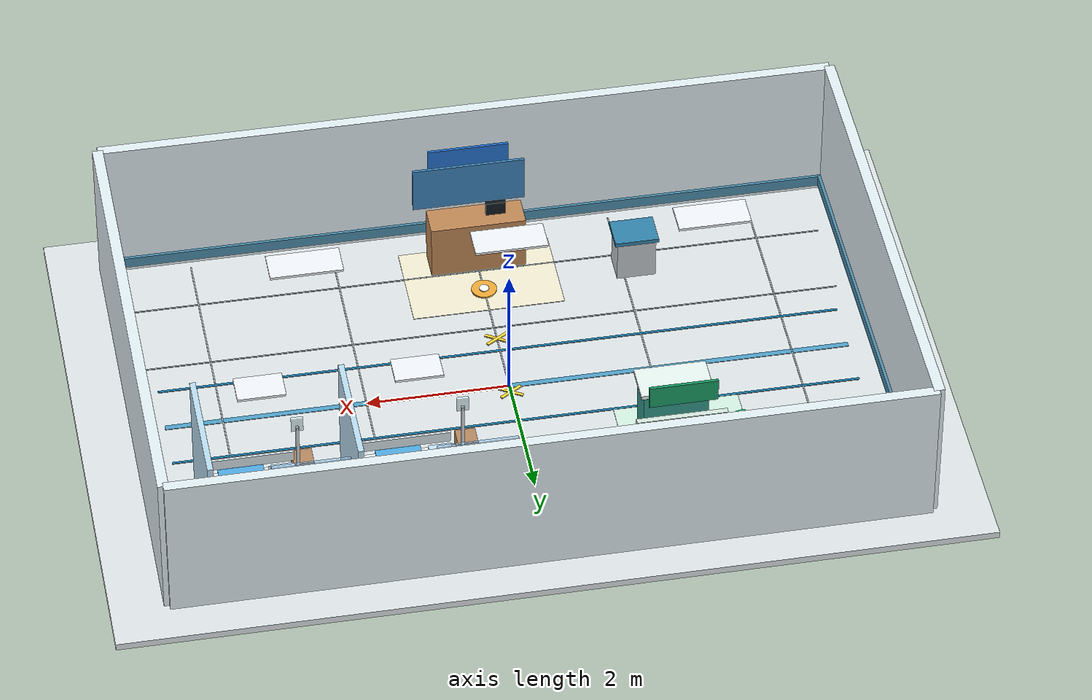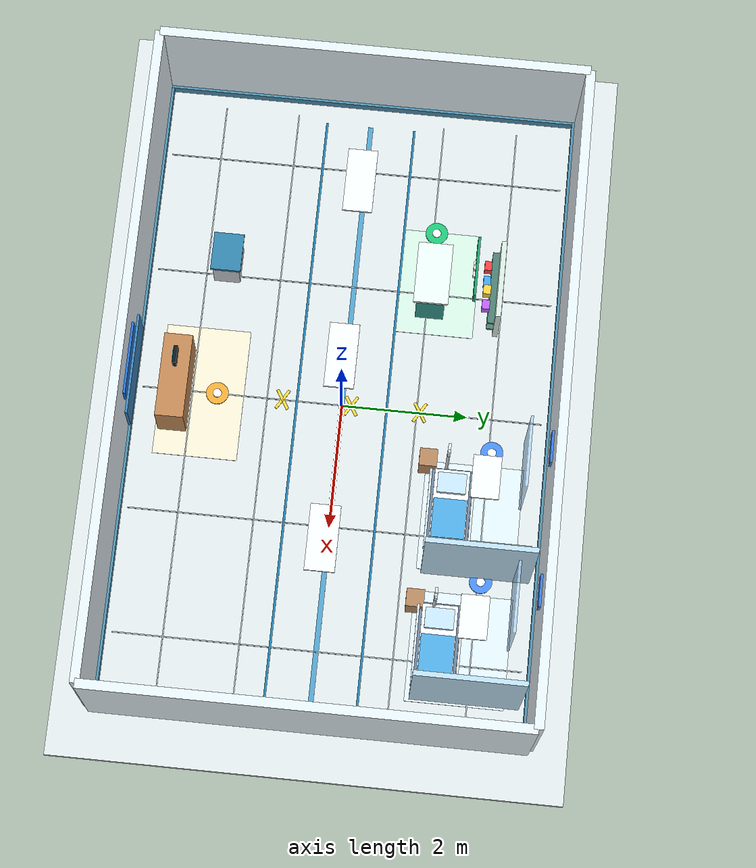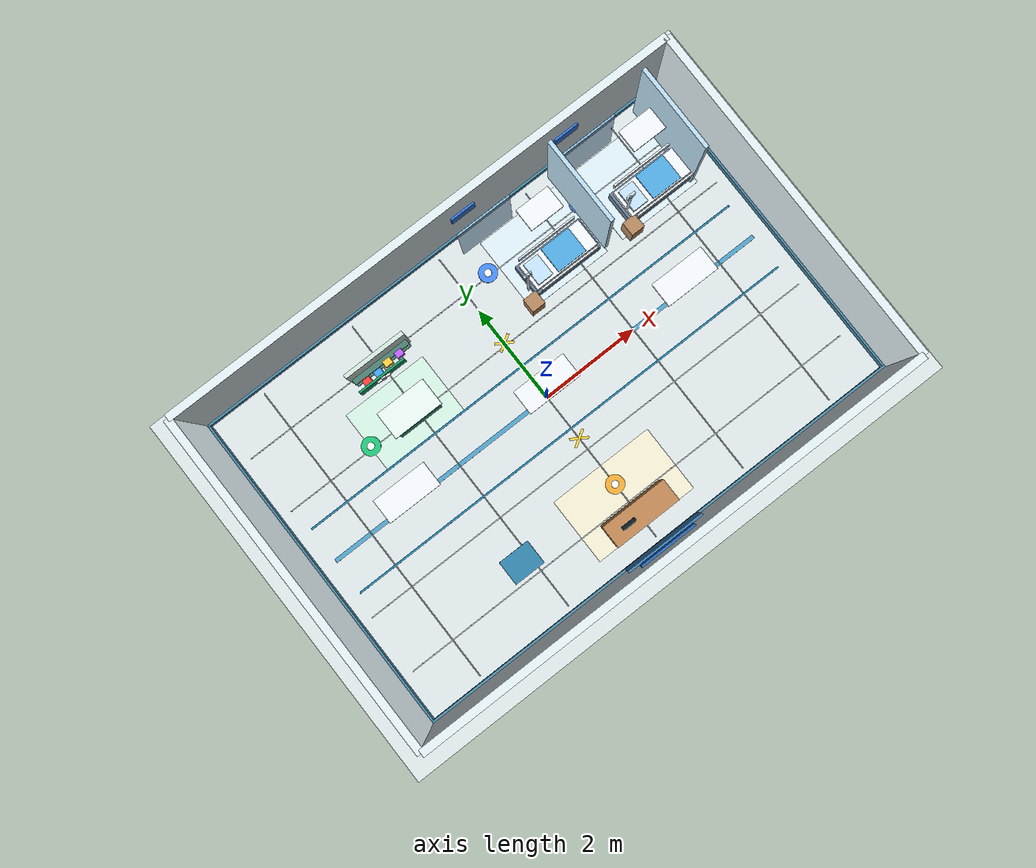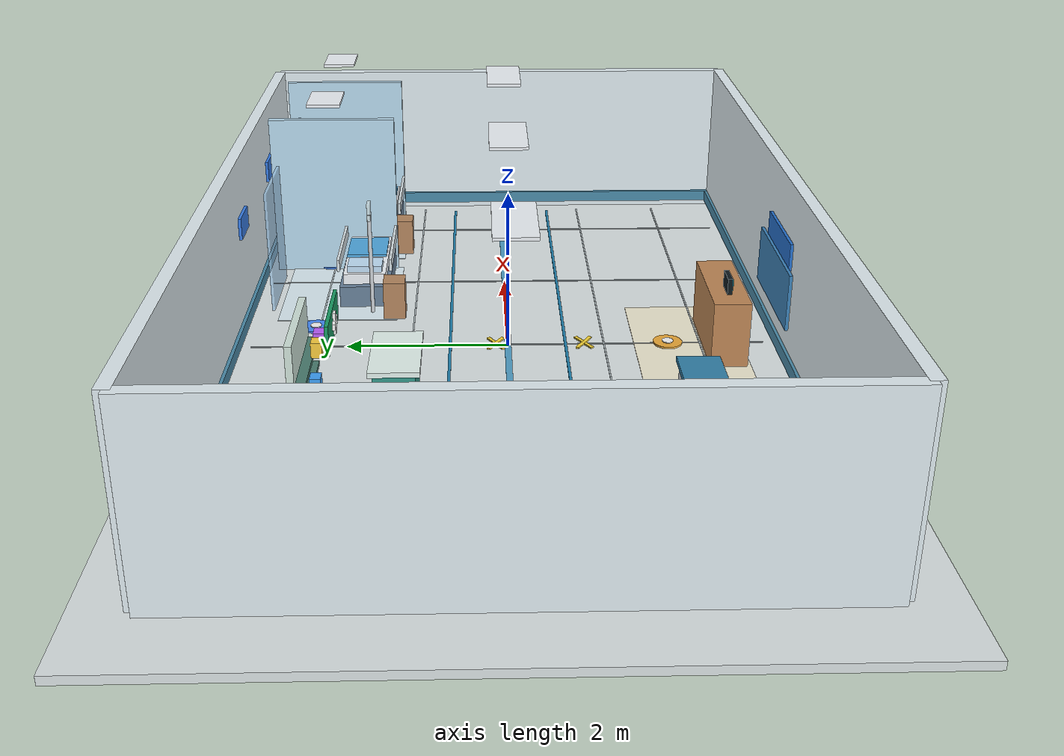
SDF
<?xml version="1.0" ?>
<sdf version="1.6">
  <world name="hospital_world">
    <gravity>0 0 -9.8</gravity>

    <scene>
      <ambient>0.78 0.8 0.82 1</ambient>
      <background>0.9 0.93 0.96 1</background>
      <shadows>false</shadows>
    </scene>

    <physics name="default_physics" type="ode">
      <max_step_size>0.001</max_step_size>
      <real_time_update_rate>1000</real_time_update_rate>
    </physics>

    <light type="directional" name="sun_light">
      <cast_shadows>false</cast_shadows>
      <pose>0 0 10 0 0 0</pose>
      <diffuse>0.95 0.95 0.9 1</diffuse>
      <specular>0.2 0.2 0.2 1</specular>
      <attenuation>
        <range>1000</range>
        <constant>0.9</constant>
        <linear>0.01</linear>
        <quadratic>0.001</quadratic>
      </attenuation>
      <direction>-0.5 0.25 -1.0</direction>
    </light>

    <light type="point" name="ceiling_light_center">
      <pose>0 0 3.5 0 0 0</pose>
      <diffuse>0.9 0.95 1.0 1</diffuse>
      <specular>0.15 0.15 0.15 1</specular>
      <attenuation>
        <range>9</range>
        <constant>0.8</constant>
        <linear>0.08</linear>
        <quadratic>0.01</quadratic>
      </attenuation>
    </light>

    <light type="point" name="ceiling_light_patient_rooms">
      <pose>2.5 2.3 3.3 0 0 0</pose>
      <diffuse>0.86 0.93 1.0 1</diffuse>
      <specular>0.12 0.12 0.12 1</specular>
      <attenuation>
        <range>7</range>
        <constant>0.8</constant>
        <linear>0.08</linear>
        <quadratic>0.012</quadratic>
      </attenuation>
    </light>

    <light type="point" name="ceiling_light_service_area">
      <pose>-1.5 -2.2 3.3 0 0 0</pose>
      <diffuse>0.86 0.93 1.0 1</diffuse>
      <specular>0.12 0.12 0.12 1</specular>
      <attenuation>
        <range>7</range>
        <constant>0.8</constant>
        <linear>0.08</linear>
        <quadratic>0.012</quadratic>
      </attenuation>
    </light>

    <model name="floor">
      <static>true</static>
      <link name="floor_link">
        <collision name="floor_collision">
          <pose>0 0 -0.05 0 0 0</pose>
          <geometry><box><size>12 8 0.1</size></box></geometry>
        </collision>
        <visual name="floor_visual">
          <pose>0 0 -0.05 0 0 0</pose>
          <geometry><box><size>12 8 0.1</size></box></geometry>
          <material>
            <ambient>0.8 0.84 0.85 1</ambient>
            <diffuse>0.88 0.91 0.92 1</diffuse>
            <specular>0.05 0.05 0.05 1</specular>
          </material>
        </visual>
      </link>
    </model>

    <model name="main_corridor_strip">
      <static>true</static>
      <link name="link">
        <visual name="visual">
          <pose>0 0 0.006 0 0 0</pose>
          <geometry><box><size>9.6 0.08 0.01</size></box></geometry>
          <material>
            <ambient>0.28 0.55 0.68 1</ambient>
            <diffuse>0.32 0.64 0.8 1</diffuse>
          </material>
        </visual>
      </link>
    </model>

    <model name="floor_zones_and_markings">
      <static>true</static>
      <link name="link">
        <visual name="patient_room_floor_101">
          <pose>1.65 2.2 0.008 0 0 0</pose>
          <geometry><box><size>1.75 1.55 0.01</size></box></geometry>
          <material>
            <ambient>0.83 0.9 0.94 1</ambient>
            <diffuse>0.88 0.95 0.98 1</diffuse>
          </material>
        </visual>
        <visual name="patient_room_floor_102">
          <pose>3.75 2.2 0.008 0 0 0</pose>
          <geometry><box><size>1.75 1.55 0.01</size></box></geometry>
          <material>
            <ambient>0.83 0.9 0.94 1</ambient>
            <diffuse>0.88 0.95 0.98 1</diffuse>
          </material>
        </visual>
        <visual name="pharmacy_floor">
          <pose>-2.2 1.35 0.009 0 0 0</pose>
          <geometry><box><size>1.75 1.25 0.01</size></box></geometry>
          <material>
            <ambient>0.8 0.9 0.86 1</ambient>
            <diffuse>0.84 0.96 0.9 1</diffuse>
          </material>
        </visual>
        <visual name="nurse_station_floor">
          <pose>0 -2.25 0.009 0 0 0</pose>
          <geometry><box><size>2.15 1.35 0.01</size></box></geometry>
          <material>
            <ambient>0.88 0.86 0.78 1</ambient>
            <diffuse>0.96 0.94 0.84 1</diffuse>
          </material>
        </visual>
        <visual name="corridor_edge_north">
          <pose>0 0.72 0.014 0 0 0</pose>
          <geometry><box><size>9.6 0.035 0.012</size></box></geometry>
          <material><ambient>0.1 0.42 0.56 1</ambient><diffuse>0.12 0.5 0.68 1</diffuse></material>
        </visual>
        <visual name="corridor_edge_south">
          <pose>0 -0.72 0.014 0 0 0</pose>
          <geometry><box><size>9.6 0.035 0.012</size></box></geometry>
          <material><ambient>0.1 0.42 0.56 1</ambient><diffuse>0.12 0.5 0.68 1</diffuse></material>
        </visual>
      </link>
    </model>

    <model name="floor_tile_lines">
      <static>true</static>
      <link name="link">
        <visual name="tile_x_1"><pose>-4 0 0.012 0 0 0</pose><geometry><box><size>0.018 6.4 0.01</size></box></geometry><material><ambient>0.68 0.73 0.75 1</ambient><diffuse>0.72 0.77 0.79 1</diffuse></material></visual>
        <visual name="tile_x_2"><pose>-2 0 0.012 0 0 0</pose><geometry><box><size>0.018 6.4 0.01</size></box></geometry><material><ambient>0.68 0.73 0.75 1</ambient><diffuse>0.72 0.77 0.79 1</diffuse></material></visual>
        <visual name="tile_x_3"><pose>0 0 0.012 0 0 0</pose><geometry><box><size>0.018 6.4 0.01</size></box></geometry><material><ambient>0.68 0.73 0.75 1</ambient><diffuse>0.72 0.77 0.79 1</diffuse></material></visual>
        <visual name="tile_x_4"><pose>2 0 0.012 0 0 0</pose><geometry><box><size>0.018 6.4 0.01</size></box></geometry><material><ambient>0.68 0.73 0.75 1</ambient><diffuse>0.72 0.77 0.79 1</diffuse></material></visual>
        <visual name="tile_x_5"><pose>4 0 0.012 0 0 0</pose><geometry><box><size>0.018 6.4 0.01</size></box></geometry><material><ambient>0.68 0.73 0.75 1</ambient><diffuse>0.72 0.77 0.79 1</diffuse></material></visual>
        <visual name="tile_y_1"><pose>0 -2.4 0.012 0 0 0</pose><geometry><box><size>9.8 0.018 0.01</size></box></geometry><material><ambient>0.68 0.73 0.75 1</ambient><diffuse>0.72 0.77 0.79 1</diffuse></material></visual>
        <visual name="tile_y_2"><pose>0 -1.2 0.012 0 0 0</pose><geometry><box><size>9.8 0.018 0.01</size></box></geometry><material><ambient>0.68 0.73 0.75 1</ambient><diffuse>0.72 0.77 0.79 1</diffuse></material></visual>
        <visual name="tile_y_3"><pose>0 1.2 0.012 0 0 0</pose><geometry><box><size>9.8 0.018 0.01</size></box></geometry><material><ambient>0.68 0.73 0.75 1</ambient><diffuse>0.72 0.77 0.79 1</diffuse></material></visual>
        <visual name="tile_y_4"><pose>0 2.4 0.012 0 0 0</pose><geometry><box><size>9.8 0.018 0.01</size></box></geometry><material><ambient>0.68 0.73 0.75 1</ambient><diffuse>0.72 0.77 0.79 1</diffuse></material></visual>
      </link>
    </model>

    <model name="north_wall">
      <static>true</static>
      <pose>0 3.4 1.1 0 0 0</pose>
      <link name="link">
        <collision name="collision"><geometry><box><size>10.4 0.15 2.2</size></box></geometry></collision>
        <visual name="visual">
          <geometry><box><size>10.4 0.15 2.2</size></box></geometry>
          <material>
            <ambient>0.82 0.88 0.9 1</ambient>
            <diffuse>0.9 0.95 0.97 1</diffuse>
          </material>
        </visual>
      </link>
    </model>

    <model name="south_wall">
      <static>true</static>
      <pose>0 -3.4 1.1 0 0 0</pose>
      <link name="link">
        <collision name="collision"><geometry><box><size>10.4 0.15 2.2</size></box></geometry></collision>
        <visual name="visual">
          <geometry><box><size>10.4 0.15 2.2</size></box></geometry>
          <material>
            <ambient>0.82 0.88 0.9 1</ambient>
            <diffuse>0.9 0.95 0.97 1</diffuse>
          </material>
        </visual>
      </link>
    </model>

    <model name="west_wall">
      <static>true</static>
      <pose>-5.2 0 1.1 0 0 0</pose>
      <link name="link">
        <collision name="collision"><geometry><box><size>0.15 6.8 2.2</size></box></geometry></collision>
        <visual name="visual">
          <geometry><box><size>0.15 6.8 2.2</size></box></geometry>
          <material>
            <ambient>0.82 0.88 0.9 1</ambient>
            <diffuse>0.9 0.95 0.97 1</diffuse>
          </material>
        </visual>
      </link>
    </model>

    <model name="east_wall">
      <static>true</static>
      <pose>5.2 0 1.1 0 0 0</pose>
      <link name="link">
        <collision name="collision"><geometry><box><size>0.15 6.8 2.2</size></box></geometry></collision>
        <visual name="visual">
          <geometry><box><size>0.15 6.8 2.2</size></box></geometry>
          <material>
            <ambient>0.82 0.88 0.9 1</ambient>
            <diffuse>0.9 0.95 0.97 1</diffuse>
          </material>
        </visual>
      </link>
    </model>

    <model name="room_101_visual_wall">
      <static>true</static>
      <pose>2.55 2.35 1.1 0 0 0</pose>
      <link name="link">
        <visual name="visual">
          <geometry><box><size>0.08 1.7 2.2</size></box></geometry>
          <material>
            <ambient>0.68 0.8 0.88 1</ambient>
            <diffuse>0.74 0.88 0.96 1</diffuse>
          </material>
        </visual>
      </link>
    </model>

    <model name="room_102_visual_wall">
      <static>true</static>
      <pose>4.55 2.35 1.1 0 0 0</pose>
      <link name="link">
        <visual name="visual">
          <geometry><box><size>0.08 1.7 2.2</size></box></geometry>
          <material>
            <ambient>0.68 0.8 0.88 1</ambient>
            <diffuse>0.74 0.88 0.96 1</diffuse>
          </material>
        </visual>
      </link>
    </model>

    <model name="bed_1">
      <static>true</static>
      <pose>1.7 1.85 0 0 0 0</pose>
      <link name="bed_link">
        <collision name="bed_collision">
          <pose>0 0 0.27 0 0 0</pose>
          <geometry><box><size>1.35 0.55 0.34</size></box></geometry>
        </collision>
        <visual name="bed_frame">
          <pose>0 0 0.25 0 0 0</pose>
          <geometry><box><size>1.45 0.65 0.28</size></box></geometry>
          <material>
            <ambient>0.38 0.46 0.55 1</ambient>
            <diffuse>0.42 0.52 0.62 1</diffuse>
          </material>
        </visual>
        <visual name="mattress">
          <pose>0 0 0.48 0 0 0</pose>
          <geometry><box><size>1.35 0.55 0.14</size></box></geometry>
          <material>
            <ambient>0.92 0.95 0.98 1</ambient>
            <diffuse>0.96 0.98 1.0 1</diffuse>
          </material>
        </visual>
        <visual name="pillow">
          <pose>-0.45 0 0.59 0 0 0</pose>
          <geometry><box><size>0.32 0.45 0.08</size></box></geometry>
          <material>
            <ambient>0.74 0.86 0.96 1</ambient>
            <diffuse>0.78 0.9 1.0 1</diffuse>
          </material>
        </visual>
      </link>
    </model>

    <model name="bed_2">
      <static>true</static>
      <pose>3.85 1.85 0 0 0 0</pose>
      <link name="bed_link">
        <collision name="bed_collision">
          <pose>0 0 0.27 0 0 0</pose>
          <geometry><box><size>1.35 0.55 0.34</size></box></geometry>
        </collision>
        <visual name="bed_frame">
          <pose>0 0 0.25 0 0 0</pose>
          <geometry><box><size>1.45 0.65 0.28</size></box></geometry>
          <material>
            <ambient>0.38 0.46 0.55 1</ambient>
            <diffuse>0.42 0.52 0.62 1</diffuse>
          </material>
        </visual>
        <visual name="mattress">
          <pose>0 0 0.48 0 0 0</pose>
          <geometry><box><size>1.35 0.55 0.14</size></box></geometry>
          <material>
            <ambient>0.92 0.95 0.98 1</ambient>
            <diffuse>0.96 0.98 1.0 1</diffuse>
          </material>
        </visual>
        <visual name="pillow">
          <pose>-0.45 0 0.59 0 0 0</pose>
          <geometry><box><size>0.32 0.45 0.08</size></box></geometry>
          <material>
            <ambient>0.74 0.86 0.96 1</ambient>
            <diffuse>0.78 0.9 1.0 1</diffuse>
          </material>
        </visual>
      </link>
    </model>

    <model name="obstacle_cart">
      <static>true</static>
      <pose>-2.15 -2.05 0 0 0 0</pose>
      <link name="cart_link">
        <collision name="cart_collision">
          <pose>0 0 0.35 0 0 0</pose>
          <geometry><box><size>0.55 0.42 0.7</size></box></geometry>
        </collision>
        <visual name="cart_body">
          <pose>0 0 0.38 0 0 0</pose>
          <geometry><box><size>0.55 0.42 0.62</size></box></geometry>
          <material>
            <ambient>0.72 0.74 0.76 1</ambient>
            <diffuse>0.78 0.8 0.82 1</diffuse>
          </material>
        </visual>
        <visual name="cart_top">
          <pose>0 0 0.72 0 0 0</pose>
          <geometry><box><size>0.62 0.48 0.06</size></box></geometry>
          <material>
            <ambient>0.18 0.45 0.58 1</ambient>
            <diffuse>0.2 0.52 0.68 1</diffuse>
          </material>
        </visual>
      </link>
    </model>

    <model name="delivery_station_pharmacy">
      <static>true</static>
      <pose>-2.05 1.25 0 0 0 0</pose>
      <link name="station">
        <collision name="counter_collision">
          <pose>0 0 0.45 0 0 0</pose>
          <geometry><box><size>0.9 0.45 0.9</size></box></geometry>
        </collision>
        <visual name="counter">
          <pose>0 0 0.45 0 0 0</pose>
          <geometry><box><size>0.9 0.45 0.9</size></box></geometry>
          <material>
            <ambient>0.18 0.5 0.46 1</ambient>
            <diffuse>0.2 0.6 0.55 1</diffuse>
          </material>
        </visual>
        <visual name="counter_top">
          <pose>0 0 0.92 0 0 0</pose>
          <geometry><box><size>1.0 0.55 0.06</size></box></geometry>
          <material>
            <ambient>0.88 0.94 0.92 1</ambient>
            <diffuse>0.92 0.98 0.96 1</diffuse>
          </material>
        </visual>
      </link>
    </model>

    <model name="delivery_station_nurse">
      <static>true</static>
      <pose>0 -2.65 0 0 0 0</pose>
      <link name="station">
        <collision name="desk_collision">
          <pose>0 0 0.42 0 0 0</pose>
          <geometry><box><size>1.35 0.45 0.84</size></box></geometry>
        </collision>
        <visual name="desk">
          <pose>0 0 0.42 0 0 0</pose>
          <geometry><box><size>1.35 0.45 0.84</size></box></geometry>
          <material>
            <ambient>0.68 0.46 0.28 1</ambient>
            <diffuse>0.76 0.54 0.34 1</diffuse>
          </material>
        </visual>
        <visual name="monitor">
          <pose>-0.28 0 0.95 0 0 0</pose>
          <geometry><box><size>0.28 0.06 0.2</size></box></geometry>
          <material>
            <ambient>0.05 0.08 0.1 1</ambient>
            <diffuse>0.06 0.1 0.12 1</diffuse>
          </material>
        </visual>
      </link>
    </model>

    <model name="wall_baseboards">
      <static>true</static>
      <link name="link">
        <visual name="north_baseboard"><pose>0 3.305 0.16 0 0 0</pose><geometry><box><size>10.25 0.045 0.16</size></box></geometry><material><ambient>0.26 0.48 0.58 1</ambient><diffuse>0.3 0.56 0.68 1</diffuse></material></visual>
        <visual name="south_baseboard"><pose>0 -3.305 0.16 0 0 0</pose><geometry><box><size>10.25 0.045 0.16</size></box></geometry><material><ambient>0.26 0.48 0.58 1</ambient><diffuse>0.3 0.56 0.68 1</diffuse></material></visual>
        <visual name="west_baseboard"><pose>-5.105 0 0.16 0 0 0</pose><geometry><box><size>0.045 6.65 0.16</size></box></geometry><material><ambient>0.26 0.48 0.58 1</ambient><diffuse>0.3 0.56 0.68 1</diffuse></material></visual>
        <visual name="east_baseboard"><pose>5.105 0 0.16 0 0 0</pose><geometry><box><size>0.045 6.65 0.16</size></box></geometry><material><ambient>0.26 0.48 0.58 1</ambient><diffuse>0.3 0.56 0.68 1</diffuse></material></visual>
      </link>
    </model>

    <model name="delivery_goal_markers">
      <static>true</static>
      <link name="link">
        <visual name="pharmacy_goal_pad">
          <pose>-3.05 1.25 0.025 0 0 0</pose>
          <geometry><cylinder><radius>0.18</radius><length>0.025</length></cylinder></geometry>
          <material><ambient>0.1 0.65 0.38 1</ambient><diffuse>0.12 0.78 0.48 1</diffuse></material>
        </visual>
        <visual name="pharmacy_goal_center">
          <pose>-3.05 1.25 0.045 0 0 0</pose>
          <geometry><cylinder><radius>0.07</radius><length>0.012</length></cylinder></geometry>
          <material><ambient>0.95 1 0.95 1</ambient><diffuse>1 1 1 1</diffuse></material>
        </visual>
        <visual name="nurse_goal_pad">
          <pose>0 -2.0 0.025 0 0 0</pose>
          <geometry><cylinder><radius>0.18</radius><length>0.025</length></cylinder></geometry>
          <material><ambient>0.84 0.58 0.18 1</ambient><diffuse>0.95 0.68 0.22 1</diffuse></material>
        </visual>
        <visual name="nurse_goal_center">
          <pose>0 -2.0 0.045 0 0 0</pose>
          <geometry><cylinder><radius>0.07</radius><length>0.012</length></cylinder></geometry>
          <material><ambient>0.95 1 0.95 1</ambient><diffuse>1 1 1 1</diffuse></material>
        </visual>
        <visual name="room_101_goal_pad">
          <pose>0.55 2.45 0.025 0 0 0</pose>
          <geometry><cylinder><radius>0.18</radius><length>0.025</length></cylinder></geometry>
          <material><ambient>0.22 0.46 0.9 1</ambient><diffuse>0.28 0.56 1.0 1</diffuse></material>
        </visual>
        <visual name="room_101_goal_center">
          <pose>0.55 2.45 0.045 0 0 0</pose>
          <geometry><cylinder><radius>0.07</radius><length>0.012</length></cylinder></geometry>
          <material><ambient>0.95 1 0.95 1</ambient><diffuse>1 1 1 1</diffuse></material>
        </visual>
        <visual name="room_102_goal_pad">
          <pose>2.65 2.45 0.025 0 0 0</pose>
          <geometry><cylinder><radius>0.18</radius><length>0.025</length></cylinder></geometry>
          <material><ambient>0.22 0.46 0.9 1</ambient><diffuse>0.28 0.56 1.0 1</diffuse></material>
        </visual>
        <visual name="room_102_goal_center">
          <pose>2.65 2.45 0.045 0 0 0</pose>
          <geometry><cylinder><radius>0.07</radius><length>0.012</length></cylinder></geometry>
          <material><ambient>0.95 1 0.95 1</ambient><diffuse>1 1 1 1</diffuse></material>
        </visual>
      </link>
    </model>

    <model name="hospital_signage">
      <static>true</static>
      <link name="link">
        <visual name="pharmacy_sign_panel">
          <pose>-2.05 1.92 1.3 0 0 0</pose>
          <geometry><box><size>0.95 0.04 0.34</size></box></geometry>
          <material><ambient>0.08 0.5 0.32 1</ambient><diffuse>0.1 0.62 0.4 1</diffuse></material>
        </visual>
        <visual name="pharmacy_cross_vertical">
          <pose>-2.05 1.895 1.3 0 0 0</pose>
          <geometry><box><size>0.08 0.045 0.24</size></box></geometry>
          <material><ambient>0.96 1 0.96 1</ambient><diffuse>1 1 1 1</diffuse></material>
        </visual>
        <visual name="pharmacy_cross_horizontal">
          <pose>-2.05 1.89 1.3 0 0 0</pose>
          <geometry><box><size>0.26 0.045 0.075</size></box></geometry>
          <material><ambient>0.96 1 0.96 1</ambient><diffuse>1 1 1 1</diffuse></material>
        </visual>
        <visual name="nurse_sign_panel">
          <pose>0 -3.31 1.38 0 0 0</pose>
          <geometry><box><size>1.15 0.045 0.34</size></box></geometry>
          <material><ambient>0.12 0.36 0.68 1</ambient><diffuse>0.15 0.45 0.82 1</diffuse></material>
        </visual>
        <visual name="nurse_sign_white_bar">
          <pose>0 -3.34 1.38 0 0 0</pose>
          <geometry><box><size>0.78 0.05 0.07</size></box></geometry>
          <material><ambient>0.96 0.98 1 1</ambient><diffuse>1 1 1 1</diffuse></material>
        </visual>
        <visual name="room_101_badge">
          <pose>0.75 3.31 1.38 0 0 0</pose>
          <geometry><box><size>0.5 0.045 0.28</size></box></geometry>
          <material><ambient>0.18 0.42 0.76 1</ambient><diffuse>0.22 0.5 0.92 1</diffuse></material>
        </visual>
        <visual name="room_101_badge_mark_1"><pose>0.62 3.34 1.38 0 0 0</pose><geometry><box><size>0.055 0.05 0.18</size></box></geometry><material><ambient>1 1 1 1</ambient><diffuse>1 1 1 1</diffuse></material></visual>
        <visual name="room_101_badge_mark_2"><pose>0.76 3.34 1.38 0 0 0</pose><geometry><box><size>0.055 0.05 0.18</size></box></geometry><material><ambient>1 1 1 1</ambient><diffuse>1 1 1 1</diffuse></material></visual>
        <visual name="room_102_badge">
          <pose>3.0 3.31 1.38 0 0 0</pose>
          <geometry><box><size>0.5 0.045 0.28</size></box></geometry>
          <material><ambient>0.18 0.42 0.76 1</ambient><diffuse>0.22 0.5 0.92 1</diffuse></material>
        </visual>
        <visual name="room_102_badge_mark_1"><pose>2.85 3.34 1.38 0 0 0</pose><geometry><box><size>0.055 0.05 0.18</size></box></geometry><material><ambient>1 1 1 1</ambient><diffuse>1 1 1 1</diffuse></material></visual>
        <visual name="room_102_badge_mark_2"><pose>3.0 3.34 1.38 0 0 0</pose><geometry><box><size>0.055 0.05 0.18</size></box></geometry><material><ambient>1 1 1 1</ambient><diffuse>1 1 1 1</diffuse></material></visual>
        <visual name="room_102_badge_mark_3"><pose>3.15 3.34 1.38 0 0 0</pose><geometry><box><size>0.055 0.05 0.18</size></box></geometry><material><ambient>1 1 1 1</ambient><diffuse>1 1 1 1</diffuse></material></visual>
      </link>
    </model>

    <model name="pharmacy_shelves">
      <static>true</static>
      <link name="link">
        <visual name="shelf_back"><pose>-1.95 2.32 0.75 0 0 0</pose><geometry><box><size>1.25 0.08 1.05</size></box></geometry><material><ambient>0.78 0.86 0.82 1</ambient><diffuse>0.84 0.92 0.88 1</diffuse></material></visual>
        <visual name="shelf_1"><pose>-1.95 2.25 0.48 0 0 0</pose><geometry><box><size>1.18 0.16 0.05</size></box></geometry><material><ambient>0.25 0.42 0.38 1</ambient><diffuse>0.3 0.5 0.45 1</diffuse></material></visual>
        <visual name="shelf_2"><pose>-1.95 2.25 0.78 0 0 0</pose><geometry><box><size>1.18 0.16 0.05</size></box></geometry><material><ambient>0.25 0.42 0.38 1</ambient><diffuse>0.3 0.5 0.45 1</diffuse></material></visual>
        <visual name="medicine_box_1"><pose>-2.35 2.12 0.6 0 0 0</pose><geometry><box><size>0.15 0.12 0.18</size></box></geometry><material><ambient>0.9 0.2 0.2 1</ambient><diffuse>1 0.25 0.25 1</diffuse></material></visual>
        <visual name="medicine_box_2"><pose>-2.1 2.12 0.6 0 0 0</pose><geometry><box><size>0.15 0.12 0.18</size></box></geometry><material><ambient>0.2 0.55 0.95 1</ambient><diffuse>0.25 0.65 1 1</diffuse></material></visual>
        <visual name="medicine_box_3"><pose>-1.85 2.12 0.9 0 0 0</pose><geometry><box><size>0.15 0.12 0.18</size></box></geometry><material><ambient>0.95 0.72 0.2 1</ambient><diffuse>1 0.82 0.25 1</diffuse></material></visual>
        <visual name="medicine_box_4"><pose>-1.6 2.12 0.9 0 0 0</pose><geometry><box><size>0.15 0.12 0.18</size></box></geometry><material><ambient>0.65 0.3 0.88 1</ambient><diffuse>0.75 0.38 1 1</diffuse></material></visual>
      </link>
    </model>

    <model name="nurse_station_details">
      <static>true</static>
      <link name="link">
        <visual name="back_board"><pose>0 -3.27 0.9 0 0 0</pose><geometry><box><size>1.6 0.04 0.7</size></box></geometry><material><ambient>0.2 0.44 0.62 1</ambient><diffuse>0.24 0.52 0.74 1</diffuse></material></visual>
        <visual name="chart_1"><pose>-0.42 -3.305 0.95 0 0 0</pose><geometry><box><size>0.22 0.045 0.28</size></box></geometry><material><ambient>0.96 0.96 0.9 1</ambient><diffuse>1 1 0.94 1</diffuse></material></visual>
        <visual name="chart_2"><pose>-0.08 -3.305 0.95 0 0 0</pose><geometry><box><size>0.22 0.045 0.28</size></box></geometry><material><ambient>0.96 0.96 0.9 1</ambient><diffuse>1 1 0.94 1</diffuse></material></visual>
        <visual name="chart_3"><pose>0.26 -3.305 0.95 0 0 0</pose><geometry><box><size>0.22 0.045 0.28</size></box></geometry><material><ambient>0.96 0.96 0.9 1</ambient><diffuse>1 1 0.94 1</diffuse></material></visual>
        <visual name="monitor_glow"><pose>-0.28 -2.66 0.95 0 0 0</pose><geometry><box><size>0.22 0.065 0.13</size></box></geometry><material><ambient>0.08 0.75 0.9 1</ambient><diffuse>0.08 0.85 1 1</diffuse></material></visual>
      </link>
    </model>

    <model name="patient_room_details">
      <static>true</static>
      <link name="link">
        <visual name="curtain_101"><pose>0.95 2.95 1.1 0 0 0</pose><geometry><box><size>1.1 0.035 1.55</size></box></geometry><material><ambient>0.6 0.78 0.92 0.72</ambient><diffuse>0.68 0.86 1 0.72</diffuse></material></visual>
        <visual name="curtain_102"><pose>3.2 2.95 1.1 0 0 0</pose><geometry><box><size>1.1 0.035 1.55</size></box></geometry><material><ambient>0.6 0.78 0.92 0.72</ambient><diffuse>0.68 0.86 1 0.72</diffuse></material></visual>
        <visual name="iv_pole_101"><pose>0.95 1.75 0.72 0 0 0</pose><geometry><cylinder><radius>0.025</radius><length>1.35</length></cylinder></geometry><material><ambient>0.72 0.74 0.76 1</ambient><diffuse>0.8 0.82 0.84 1</diffuse></material></visual>
        <visual name="iv_bag_101"><pose>0.95 1.75 1.45 0 0 0</pose><geometry><box><size>0.16 0.04 0.22</size></box></geometry><material><ambient>0.85 0.95 1 0.86</ambient><diffuse>0.9 0.98 1 0.86</diffuse></material></visual>
        <visual name="iv_pole_102"><pose>3.2 1.75 0.72 0 0 0</pose><geometry><cylinder><radius>0.025</radius><length>1.35</length></cylinder></geometry><material><ambient>0.72 0.74 0.76 1</ambient><diffuse>0.8 0.82 0.84 1</diffuse></material></visual>
        <visual name="iv_bag_102"><pose>3.2 1.75 1.45 0 0 0</pose><geometry><box><size>0.16 0.04 0.22</size></box></geometry><material><ambient>0.85 0.95 1 0.86</ambient><diffuse>0.9 0.98 1 0.86</diffuse></material></visual>
        <visual name="bedside_table_101"><pose>0.85 1.45 0.3 0 0 0</pose><geometry><box><size>0.28 0.28 0.5</size></box></geometry><material><ambient>0.62 0.46 0.32 1</ambient><diffuse>0.72 0.54 0.38 1</diffuse></material></visual>
        <visual name="bedside_table_102"><pose>3.1 1.45 0.3 0 0 0</pose><geometry><box><size>0.28 0.28 0.5</size></box></geometry><material><ambient>0.62 0.46 0.32 1</ambient><diffuse>0.72 0.54 0.38 1</diffuse></material></visual>
      </link>
    </model>

    <model name="bed_polish_details">
      <static>true</static>
      <link name="link">
        <visual name="blanket_101"><pose>1.82 1.85 0.61 0 0 0</pose><geometry><box><size>0.62 0.52 0.035</size></box></geometry><material><ambient>0.28 0.58 0.78 1</ambient><diffuse>0.32 0.68 0.9 1</diffuse></material></visual>
        <visual name="left_rail_101"><pose>1.7 2.19 0.65 0 0 0</pose><geometry><box><size>1.25 0.035 0.16</size></box></geometry><material><ambient>0.78 0.82 0.84 1</ambient><diffuse>0.86 0.9 0.92 1</diffuse></material></visual>
        <visual name="right_rail_101"><pose>1.7 1.51 0.65 0 0 0</pose><geometry><box><size>1.25 0.035 0.16</size></box></geometry><material><ambient>0.78 0.82 0.84 1</ambient><diffuse>0.86 0.9 0.92 1</diffuse></material></visual>
        <visual name="blanket_102"><pose>3.97 1.85 0.61 0 0 0</pose><geometry><box><size>0.62 0.52 0.035</size></box></geometry><material><ambient>0.28 0.58 0.78 1</ambient><diffuse>0.32 0.68 0.9 1</diffuse></material></visual>
        <visual name="left_rail_102"><pose>3.85 2.19 0.65 0 0 0</pose><geometry><box><size>1.25 0.035 0.16</size></box></geometry><material><ambient>0.78 0.82 0.84 1</ambient><diffuse>0.86 0.9 0.92 1</diffuse></material></visual>
        <visual name="right_rail_102"><pose>3.85 1.51 0.65 0 0 0</pose><geometry><box><size>1.25 0.035 0.16</size></box></geometry><material><ambient>0.78 0.82 0.84 1</ambient><diffuse>0.86 0.9 0.92 1</diffuse></material></visual>
      </link>
    </model>

    <model name="ceiling_panels">
      <static>true</static>
      <link name="link">
        <visual name="panel_corridor_1"><pose>-2.8 0 2.72 0 0 0</pose><geometry><box><size>1.0 0.45 0.035</size></box></geometry><material><ambient>0.92 0.96 1 1</ambient><diffuse>0.96 0.98 1 1</diffuse></material></visual>
        <visual name="panel_corridor_2"><pose>0 0 2.72 0 0 0</pose><geometry><box><size>1.0 0.45 0.035</size></box></geometry><material><ambient>0.92 0.96 1 1</ambient><diffuse>0.96 0.98 1 1</diffuse></material></visual>
        <visual name="panel_corridor_3"><pose>2.8 0 2.72 0 0 0</pose><geometry><box><size>1.0 0.45 0.035</size></box></geometry><material><ambient>0.92 0.96 1 1</ambient><diffuse>0.96 0.98 1 1</diffuse></material></visual>
        <visual name="panel_room_101"><pose>1.65 2.3 2.72 0 0 0</pose><geometry><box><size>0.65 0.42 0.035</size></box></geometry><material><ambient>0.92 0.96 1 1</ambient><diffuse>0.96 0.98 1 1</diffuse></material></visual>
        <visual name="panel_room_102"><pose>3.75 2.3 2.72 0 0 0</pose><geometry><box><size>0.65 0.42 0.035</size></box></geometry><material><ambient>0.92 0.96 1 1</ambient><diffuse>0.96 0.98 1 1</diffuse></material></visual>
      </link>
    </model>

    <model name="route_chevrons">
      <static>true</static>
      <link name="link">
        <visual name="chevron_1_left"><pose>0 -0.95 0.03 0 0 0.55</pose><geometry><box><size>0.36 0.045 0.018</size></box></geometry><material><ambient>0.95 0.78 0.18 1</ambient><diffuse>1 0.86 0.22 1</diffuse></material></visual>
        <visual name="chevron_1_right"><pose>0 -0.95 0.03 0 0 -0.55</pose><geometry><box><size>0.36 0.045 0.018</size></box></geometry><material><ambient>0.95 0.78 0.18 1</ambient><diffuse>1 0.86 0.22 1</diffuse></material></visual>
        <visual name="chevron_2_left"><pose>0 0.15 0.03 0 0 0.55</pose><geometry><box><size>0.36 0.045 0.018</size></box></geometry><material><ambient>0.95 0.78 0.18 1</ambient><diffuse>1 0.86 0.22 1</diffuse></material></visual>
        <visual name="chevron_2_right"><pose>0 0.15 0.03 0 0 -0.55</pose><geometry><box><size>0.36 0.045 0.018</size></box></geometry><material><ambient>0.95 0.78 0.18 1</ambient><diffuse>1 0.86 0.22 1</diffuse></material></visual>
        <visual name="chevron_3_left"><pose>0 1.25 0.03 0 0 0.55</pose><geometry><box><size>0.36 0.045 0.018</size></box></geometry><material><ambient>0.95 0.78 0.18 1</ambient><diffuse>1 0.86 0.22 1</diffuse></material></visual>
        <visual name="chevron_3_right"><pose>0 1.25 0.03 0 0 -0.55</pose><geometry><box><size>0.36 0.045 0.018</size></box></geometry><material><ambient>0.95 0.78 0.18 1</ambient><diffuse>1 0.86 0.22 1</diffuse></material></visual>
      </link>
    </model>
  </world>
</sdf>
